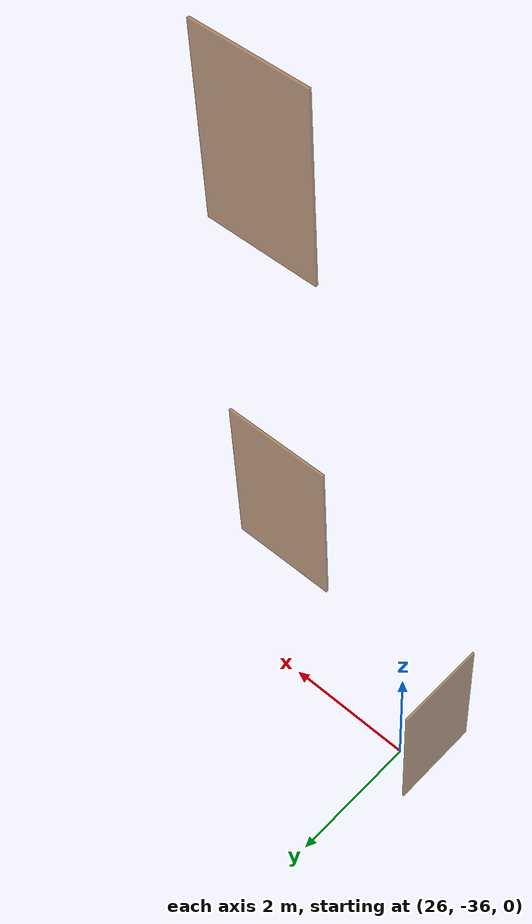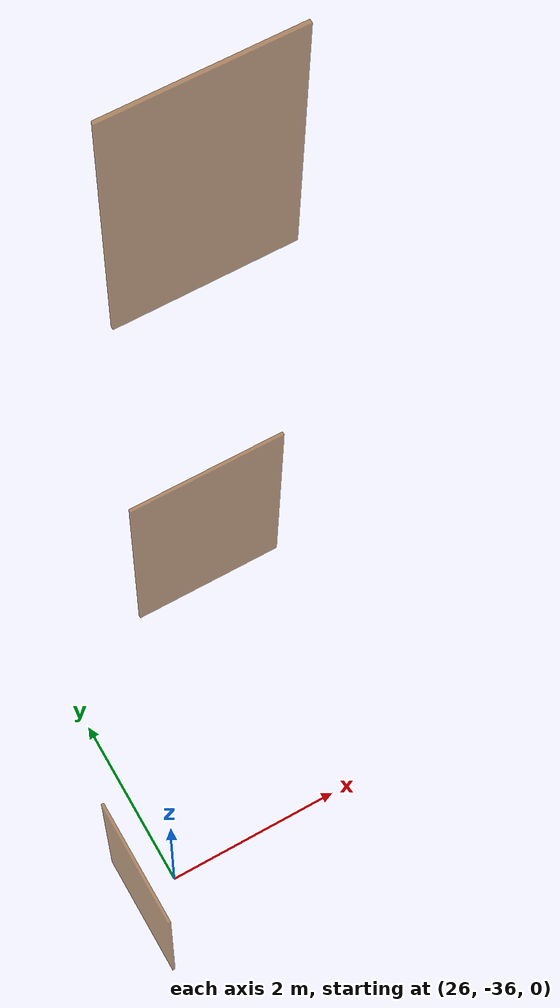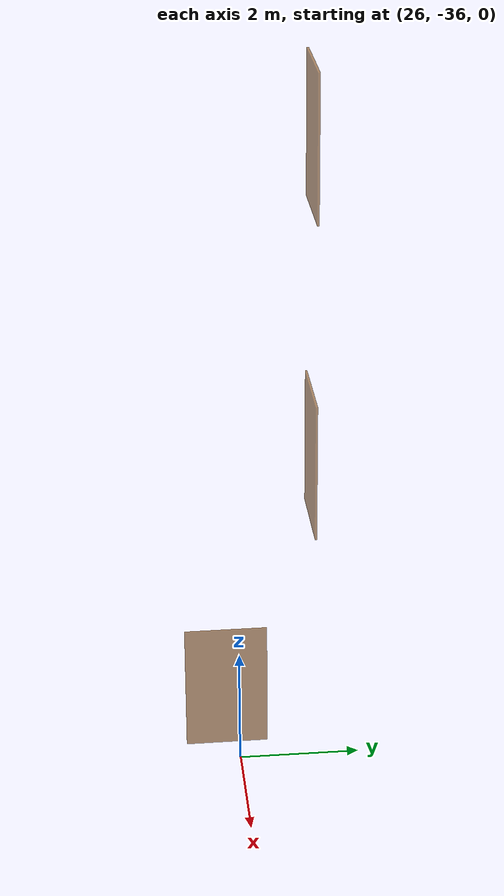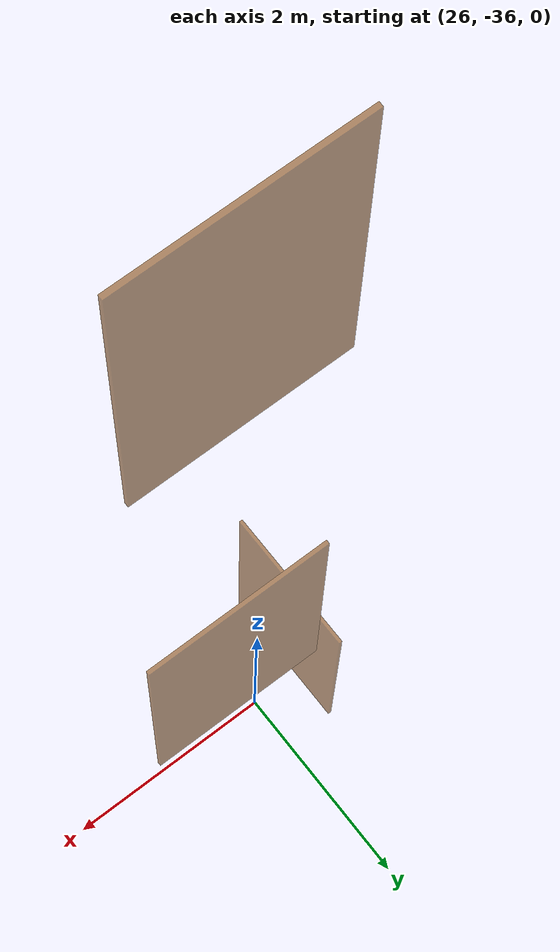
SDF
<sdf version="1.7">
 <world name="world">
  <include><uri>model://sun</uri></include>
  <model name="L1_door_stair1">
   <pose>25.5080405780083 -36.18260103728351 0.0 0 0 -1.5707963267948966</pose>
   <link name="right">
    <pose>0 0 1.11 0 0 0</pose>
    <visual name="right_visual">
     <geometry><box><size>1.3763065531526217 0.03 2.2</size></box></geometry>
     <material><ambient>0.5 0.25 0 0.6</ambient><diffuse>0.5 0.25 0 0.6</diffuse></material>
    </visual>
    <collision name="right_collision">
     <geometry><box><size>1.3763065531526217 0.03 2.2</size></box></geometry>
     <surface><contact><collide_bitmask>0x02</collide_bitmask></contact></surface>
    </collision>
    <inertial>
     <mass>50.0</mass>
     <inertia><ixx>20.17041666666667</ixx><iyy>28.059248867711883</iyy><izz>7.89633220104521</izz></inertia>
    </inertial>
   </link>
   <joint name="right_joint" type="revolute">
    <parent>world</parent>
    <child>right</child>
    <axis><xyz>0 0 -1</xyz><limit><lower>0</lower><upper>1.57</upper></limit></axis>
    <pose>0.6931532765763109 0 0 0 0 0</pose>
   </joint>
   <plugin name="single_hinged_door" filename="libsingle_hinged_door_plugin.so">
    <ros><namespace>/doors/L1_door_stair1</namespace></ros>
    <right_joint>right_joint</right_joint>
    <open_angle>1.57</open_angle>
    <kp>150.0</kp>
    <kd>80.0</kd>
   </plugin>
  </model>
  <model name="L2_door_stair2">
   <pose>27.025138350256462 -34.9564967704635 5.0 0 0 3.141318493295999</pose>
   <link name="right">
    <pose>0 0 1.11 0 0 0</pose>
    <visual name="right_visual">
     <geometry><box><size>1.3771448278477751 0.03 2.2</size></box></geometry>
     <material><ambient>0.5 0.25 0 0.6</ambient><diffuse>0.5 0.25 0 0.6</diffuse></material>
    </visual>
    <collision name="right_collision">
     <geometry><box><size>1.3771448278477751 0.03 2.2</size></box></geometry>
     <surface><contact><collide_bitmask>0x02</collide_bitmask></contact></surface>
    </collision>
    <inertial>
     <mass>50.0</mass>
     <inertia><ixx>20.17041666666667</ixx><iyy>28.068866153616163</iyy><izz>7.905949486949493</izz></inertia>
    </inertial>
   </link>
   <joint name="right_joint" type="revolute">
    <parent>world</parent>
    <child>right</child>
    <axis><xyz>0 0 1</xyz><limit><lower>0</lower><upper>1.57</upper></limit></axis>
    <pose>0.6935724139238876 0 0 0 0 0</pose>
   </joint>
   <plugin name="single_hinged_door" filename="libsingle_hinged_door_plugin.so">
    <ros><namespace>/doors/L2_door_stair2</namespace></ros>
    <right_joint>right_joint</right_joint>
    <open_angle>1.57</open_angle>
    <kp>150.0</kp>
    <kd>80.0</kd>
   </plugin>
  </model>
  <model name="L3_door_stair2">
   <pose>27.025138350256462 -34.9564967704635 10.0 0 0 3.141318493295999</pose>
   <link name="right">
    <pose>0 0 1.11 0 0 0</pose>
    <visual name="right_visual">
     <geometry><box><size>1.3771448278477751 0.03 2.2</size></box></geometry>
     <material><ambient>0.5 0.25 0 0.6</ambient><diffuse>0.5 0.25 0 0.6</diffuse></material>
    </visual>
    <collision name="right_collision">
     <geometry><box><size>1.3771448278477751 0.03 2.2</size></box></geometry>
     <surface><contact><collide_bitmask>0x02</collide_bitmask></contact></surface>
    </collision>
    <inertial>
     <mass>50.0</mass>
     <inertia><ixx>20.17041666666667</ixx><iyy>28.068866153616163</iyy><izz>7.905949486949493</izz></inertia>
    </inertial>
   </link>
   <joint name="right_joint" type="revolute">
    <parent>world</parent>
    <child>right</child>
    <axis><xyz>0 0 1</xyz><limit><lower>0</lower><upper>1.57</upper></limit></axis>
    <pose>0.6935724139238876 0 0 0 0 0</pose>
   </joint>
   <plugin name="single_hinged_door" filename="libsingle_hinged_door_plugin.so">
    <ros><namespace>/doors/L3_door_stair2</namespace></ros>
    <right_joint>right_joint</right_joint>
    <open_angle>1.57</open_angle>
    <kp>150.0</kp>
    <kd>80.0</kd>
   </plugin>
  </model>
 </world>
</sdf>
